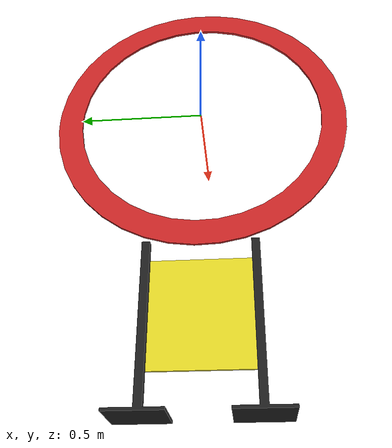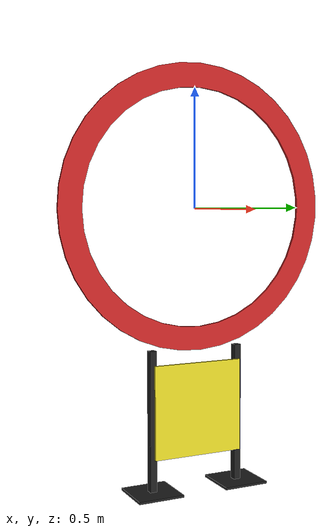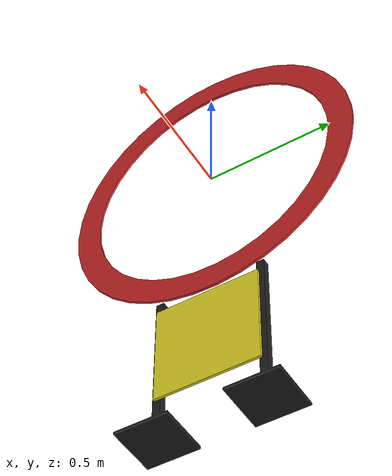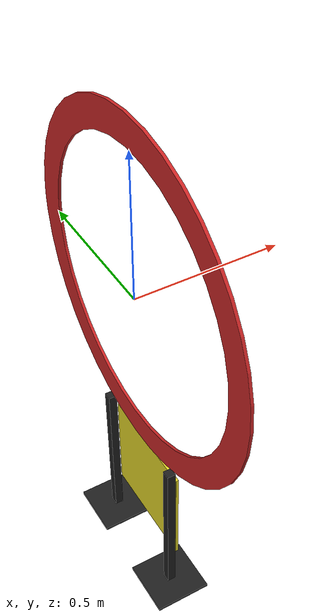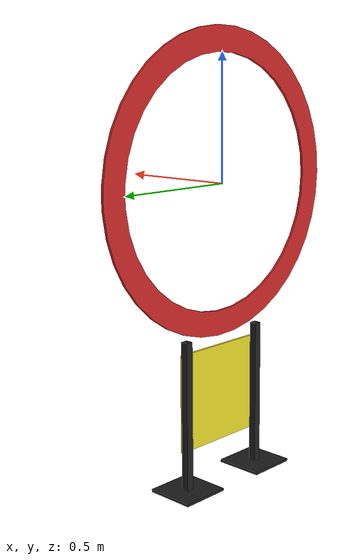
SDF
<sdf version='1.6'>
  <model name='circle_120'>
    <link name='base_link'>
      <pose frame=''>0 0 0 0 -0 0</pose>
      <inertial>
        <pose frame=''>0.009412 -0 -0.472506 0 -0 0</pose>
        <mass>6.9358</mass>
        <inertia>
          <ixx>2.73722</ixx>
          <ixy>8.78458e-19</ixy>
          <ixz>0.0099553</ixz>
          <iyy>2.18984</iyy>
          <iyz>1.70117e-16</iyz>
          <izz>0.554784</izz>
        </inertia>
      </inertial>
      <collision name='base_link_collision'>
        <pose frame=''>0 0 0 0 -0 0</pose>
        <geometry>
          <mesh>
            <scale>1 1 1</scale>
            <uri>model://circle_120/meshes/base_link.STL</uri>
          </mesh>
        </geometry>
      </collision>
      <collision name='base_link_fixed_joint_lump__pillar_collision_1'>
        <pose frame=''>0 0 -1.2 0 -0 0</pose>
        <geometry>
          <mesh>
            <scale>1 1 1</scale>
            <uri>model://circle_120/meshes/pillar.STL</uri>
          </mesh>
        </geometry>
      </collision>
      <collision name='base_link_fixed_joint_lump__rect_collision_2'>
        <pose frame=''>0 0 -0.85 0 -0 0</pose>
        <geometry>
          <mesh>
            <scale>1 1 1</scale>
            <uri>model://circle_120/meshes/rect.STL</uri>
          </mesh>
        </geometry>
      </collision>
      <visual name='base_link_visual'>
        <pose frame=''>0 0 0 0 -0 0</pose>
        <geometry>
          <mesh>
            <scale>1 1 1</scale>
            <uri>model://circle_120/meshes/base_link.STL</uri>
          </mesh>
        </geometry>
	<material>
          <script>
            <uri>__default__</uri>
            <name>Gazebo/Red</name>
            </script>
        </material>
      </visual>
      <visual name='base_link_fixed_joint_lump__pillar_visual_1'>
        <pose frame=''>0 0 -1.2 0 -0 0</pose>
        <geometry>
          <mesh>
            <scale>1 1 1</scale>
            <uri>model://circle_120/meshes/pillar.STL</uri>
          </mesh>
        </geometry>
	<material>
          <script>
            <uri>__default__</uri>
            <name>Gazebo/Black</name>
            </script>
        </material>
      </visual>
      <visual name='base_link_fixed_joint_lump__rect_visual_2'>
        <pose frame=''>0 0 -0.85 0 -0 0</pose>
        <geometry>
          <mesh>
            <scale>1 1 1</scale>
            <uri>model://circle_120/meshes/rect.STL</uri>
          </mesh>
        </geometry>
	<material>
          <script>
            <uri>__default__</uri>
            <name>Gazebo/Yellow</name>
            </script>
        </material>
      </visual>
    </link>
  </model>
</sdf>
